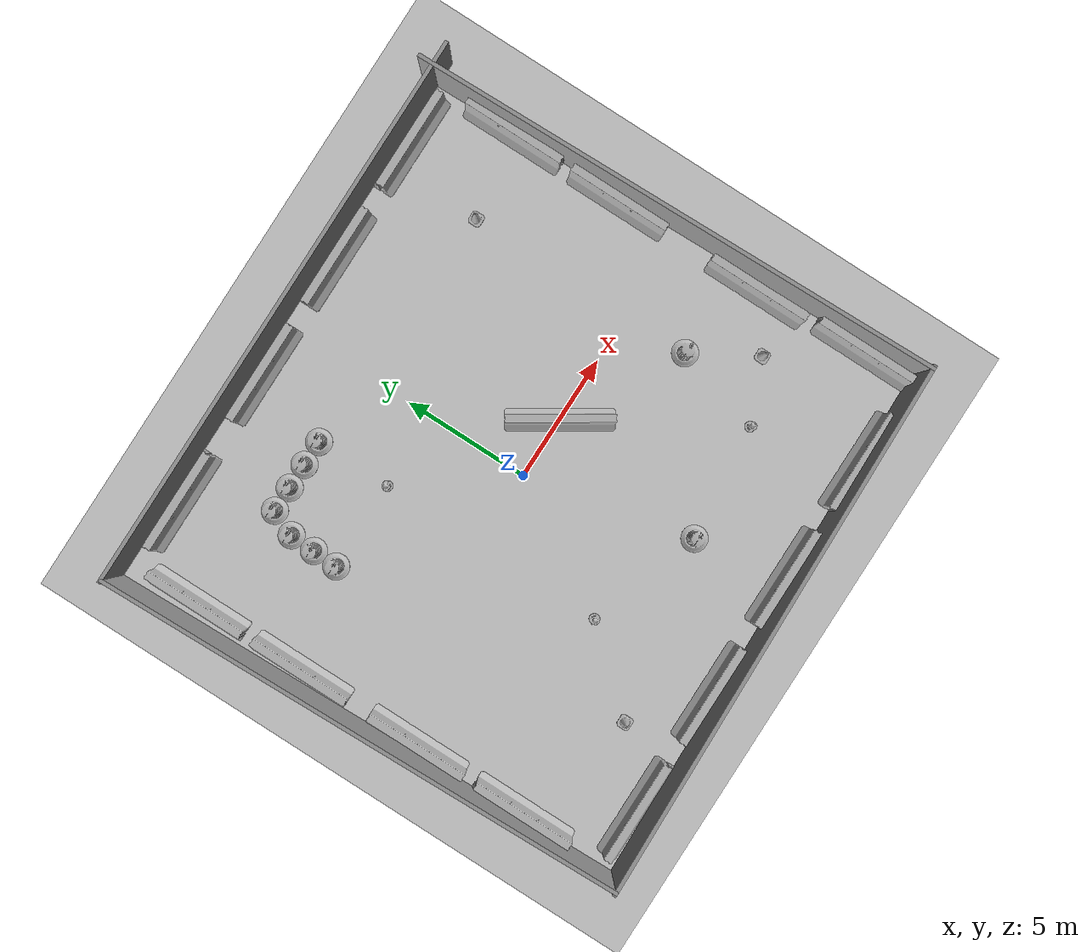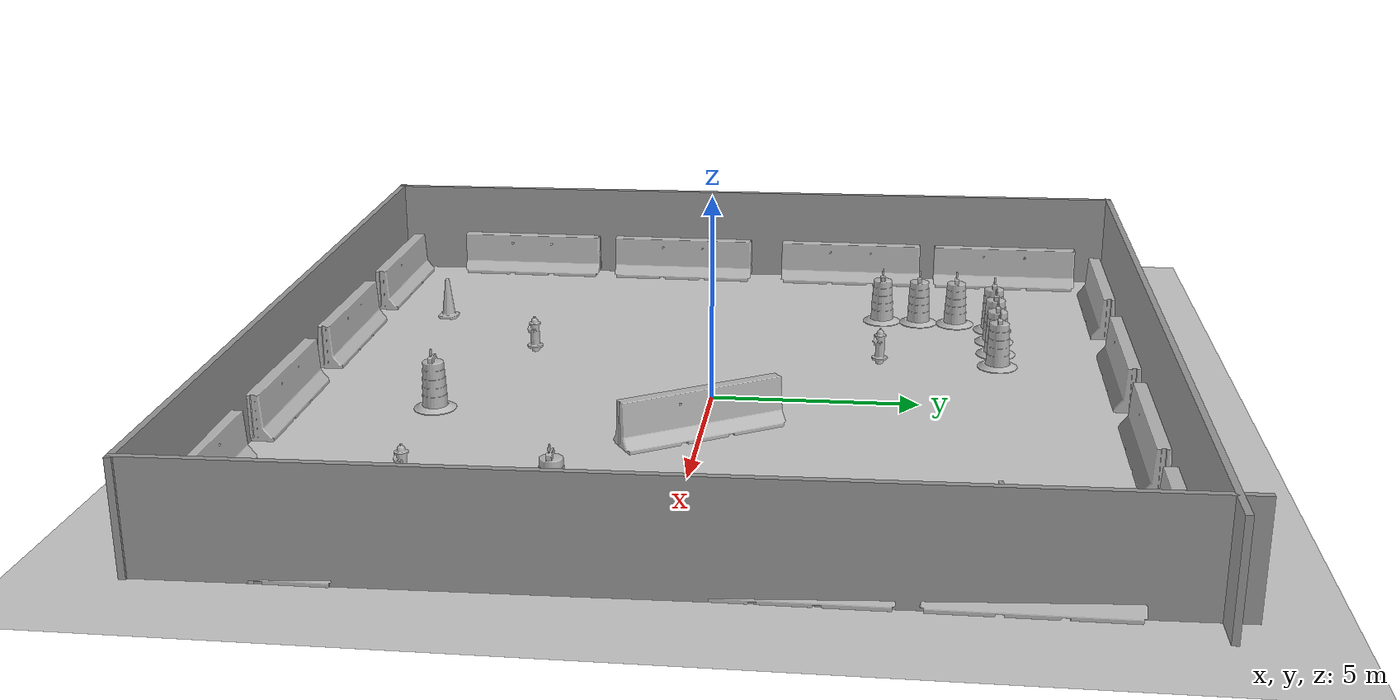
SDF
<sdf version="1.6">
 <world name="default">
  <plugin filename="ignition-gazebo-physics-system" name="gz::sim::systems::Physics"/>
  <plugin filename="gz-sim-sensors-system" name="gz::sim::systems::Sensors">
   <render_engine>ogre2</render_engine>
  </plugin>
  <plugin filename="gz-sim-imu-system" name="gz::sim::systems::Imu">
   <render_engine>ogre2</render_engine>
  </plugin>
  <plugin filename="gz-sim-scene-broadcaster-system" name="gz::sim::systems::SceneBroadcaster"/>
  <plugin filename="gz-sim-user-commands-system" name="gz::sim::systems::UserCommands"/>
  <light name="sun" type="directional">
   <pose>0 0 10 0 -0 0</pose>
   <diffuse>1 1 1 1</diffuse>
   <specular>0.2 0.2 0.2 1</specular>
   <attenuation>
    <range>1000</range>
    <constant>0.9</constant>
    <linear>0.01</linear>
    <quadratic>0.001</quadratic>
   </attenuation>
   <direction>-0.5 -0.5 -1</direction>
  </light>
  <physics name="default_physics" default="0" type="ode">
   <max_step_size>0.001</max_step_size>
   <real_time_factor>1</real_time_factor>
   <real_time_update_rate>1000</real_time_update_rate>
  </physics>
  <scene><ambient>1 1 1 1</ambient><background>1 1 1 1</background><shadows>1</shadows></scene>
  <spherical_coordinates>
   <surface_model>EARTH_WGS84</surface_model>
   <latitude_deg>43.5655</latitude_deg>
   <longitude_deg>1.4740</longitude_deg>
   <elevation>150</elevation>
   <heading_deg>180</heading_deg>
  </spherical_coordinates>
  <gravity>0 0 -9.8</gravity>
  <magnetic_field>6e-06 2.3e-05 -4.2e-05</magnetic_field>
  <atmosphere type="adiabatic"/>
  <audio><device>default</device></audio>
  <model name="ground_plane">
   <static>1</static>
   <link name="link">
    <collision name="collision">
     <geometry><plane><normal>0 0 1</normal><size>100 100</size></plane></geometry>
     <surface><friction><ode><mu>100</mu><mu2>50</mu2></ode></friction></surface>
    </collision>
    <visual name="visual">
     <cast_shadows>0</cast_shadows>
     <geometry><plane><normal>0 0 1</normal><size>100 100</size></plane></geometry>
     <material>
      <script><uri>file://media/materials/scripts/gazebo.material</uri><name>Gazebo/Grey</name></script>
     </material>
    </visual>
    <velocity_decay><linear>0</linear><angular>0</angular></velocity_decay>
   </link>
  </model>
  <model name="jersey_barrier">
   <static>1</static>
   <link name="link">
    <visual name="visual">
     <geometry><mesh><uri>model://jersey_barrier/meshes/jersey_barrier.dae</uri></mesh></geometry>
    </visual>
    <collision name="upright">
     <pose>0 0 0.5715 0 -0 0</pose>
     <geometry><box><size>4.06542 0.3063 1.143</size></box></geometry>
    </collision>
    <collision name="base">
     <pose>0 0 0.032258 0 -0 0</pose>
     <geometry><box><size>4.06542 0.8107 0.064516</size></box></geometry>
    </collision>
    <collision name="base2">
     <pose>0 0 0.1 0 -0 0</pose>
     <geometry><box><size>4.06542 0.65 0.1</size></box></geometry>
    </collision>
    <collision name="base3">
     <pose>0 0 0.2 0 -0 0</pose>
     <geometry><box><size>4.06542 0.5 0.1</size></box></geometry>
    </collision>
    <collision name="left-angle">
     <pose>0 -0.224 0.2401 0.9 -0 0</pose>
     <geometry><box><size>4.06542 0.5 0.064516</size></box></geometry>
    </collision>
    <collision name="right-angle">
     <pose>0 0.224 0.2401 -0.9 0 0</pose>
     <geometry><box><size>4.06542 0.5 0.064516</size></box></geometry>
    </collision>
    <velocity_decay><linear>0</linear><angular>0</angular></velocity_decay>
   </link>
   <pose>-8 -10 0 0 -0 0</pose>
  </model>
  <model name="jersey_barrier_0">
   <static>1</static>
   <link name="link">
    <visual name="visual">
     <geometry><mesh><uri>model://jersey_barrier/meshes/jersey_barrier.dae</uri></mesh></geometry>
    </visual>
    <collision name="upright">
     <pose>0 0 0.5715 0 -0 0</pose>
     <geometry><box><size>4.06542 0.3063 1.143</size></box></geometry>
    </collision>
    <collision name="base">
     <pose>0 0 0.032258 0 -0 0</pose>
     <geometry><box><size>4.06542 0.8107 0.064516</size></box></geometry>
    </collision>
    <collision name="base2">
     <pose>0 0 0.1 0 -0 0</pose>
     <geometry><box><size>4.06542 0.65 0.1</size></box></geometry>
    </collision>
    <collision name="base3">
     <pose>0 0 0.2 0 -0 0</pose>
     <geometry><box><size>4.06542 0.5 0.1</size></box></geometry>
    </collision>
    <collision name="left-angle">
     <pose>0 -0.224 0.2401 0.9 -0 0</pose>
     <geometry><box><size>4.06542 0.5 0.064516</size></box></geometry>
    </collision>
    <collision name="right-angle">
     <pose>0 0.224 0.2401 -0.9 0 0</pose>
     <geometry><box><size>4.06542 0.5 0.064516</size></box></geometry>
    </collision>
    <velocity_decay><linear>0</linear><angular>0</angular></velocity_decay>
   </link>
   <pose>-3 -10 0 0 -0 0</pose>
  </model>
  <model name="jersey_barrier_1">
   <static>1</static>
   <link name="link">
    <visual name="visual">
     <geometry><mesh><uri>model://jersey_barrier/meshes/jersey_barrier.dae</uri></mesh></geometry>
    </visual>
    <collision name="upright">
     <pose>0 0 0.5715 0 -0 0</pose>
     <geometry><box><size>4.06542 0.3063 1.143</size></box></geometry>
    </collision>
    <collision name="base">
     <pose>0 0 0.032258 0 -0 0</pose>
     <geometry><box><size>4.06542 0.8107 0.064516</size></box></geometry>
    </collision>
    <collision name="base2">
     <pose>0 0 0.1 0 -0 0</pose>
     <geometry><box><size>4.06542 0.65 0.1</size></box></geometry>
    </collision>
    <collision name="base3">
     <pose>0 0 0.2 0 -0 0</pose>
     <geometry><box><size>4.06542 0.5 0.1</size></box></geometry>
    </collision>
    <collision name="left-angle">
     <pose>0 -0.224 0.2401 0.9 -0 0</pose>
     <geometry><box><size>4.06542 0.5 0.064516</size></box></geometry>
    </collision>
    <collision name="right-angle">
     <pose>0 0.224 0.2401 -0.9 0 0</pose>
     <geometry><box><size>4.06542 0.5 0.064516</size></box></geometry>
    </collision>
    <velocity_decay><linear>0</linear><angular>0</angular></velocity_decay>
   </link>
   <pose>2 -10 0 0 -0 0</pose>
  </model>
  <model name="jersey_barrier_2">
   <static>1</static>
   <link name="link">
    <visual name="visual">
     <geometry><mesh><uri>model://jersey_barrier/meshes/jersey_barrier.dae</uri></mesh></geometry>
    </visual>
    <collision name="upright">
     <pose>0 0 0.5715 0 -0 0</pose>
     <geometry><box><size>4.06542 0.3063 1.143</size></box></geometry>
    </collision>
    <collision name="base">
     <pose>0 0 0.032258 0 -0 0</pose>
     <geometry><box><size>4.06542 0.8107 0.064516</size></box></geometry>
    </collision>
    <collision name="base2">
     <pose>0 0 0.1 0 -0 0</pose>
     <geometry><box><size>4.06542 0.65 0.1</size></box></geometry>
    </collision>
    <collision name="base3">
     <pose>0 0 0.2 0 -0 0</pose>
     <geometry><box><size>4.06542 0.5 0.1</size></box></geometry>
    </collision>
    <collision name="left-angle">
     <pose>0 -0.224 0.2401 0.9 -0 0</pose>
     <geometry><box><size>4.06542 0.5 0.064516</size></box></geometry>
    </collision>
    <collision name="right-angle">
     <pose>0 0.224 0.2401 -0.9 0 0</pose>
     <geometry><box><size>4.06542 0.5 0.064516</size></box></geometry>
    </collision>
    <velocity_decay><linear>0</linear><angular>0</angular></velocity_decay>
   </link>
   <pose>7 -10 0 0 -0 0</pose>
  </model>
  <model name="jersey_barrier_3">
   <static>1</static>
   <link name="link">
    <visual name="visual">
     <geometry><mesh><uri>model://jersey_barrier/meshes/jersey_barrier.dae</uri></mesh></geometry>
    </visual>
    <collision name="upright">
     <pose>0 0 0.5715 0 -0 0</pose>
     <geometry><box><size>4.06542 0.3063 1.143</size></box></geometry>
    </collision>
    <collision name="base">
     <pose>0 0 0.032258 0 -0 0</pose>
     <geometry><box><size>4.06542 0.8107 0.064516</size></box></geometry>
    </collision>
    <collision name="base2">
     <pose>0 0 0.1 0 -0 0</pose>
     <geometry><box><size>4.06542 0.65 0.1</size></box></geometry>
    </collision>
    <collision name="base3">
     <pose>0 0 0.2 0 -0 0</pose>
     <geometry><box><size>4.06542 0.5 0.1</size></box></geometry>
    </collision>
    <collision name="left-angle">
     <pose>0 -0.224 0.2401 0.9 -0 0</pose>
     <geometry><box><size>4.06542 0.5 0.064516</size></box></geometry>
    </collision>
    <collision name="right-angle">
     <pose>0 0.224 0.2401 -0.9 0 0</pose>
     <geometry><box><size>4.06542 0.5 0.064516</size></box></geometry>
    </collision>
    <velocity_decay><linear>0</linear><angular>0</angular></velocity_decay>
   </link>
   <pose>-7.50675 10 0 0 -0 0</pose>
  </model>
  <model name="jersey_barrier_4">
   <static>1</static>
   <link name="link">
    <visual name="visual">
     <geometry><mesh><uri>model://jersey_barrier/meshes/jersey_barrier.dae</uri></mesh></geometry>
    </visual>
    <collision name="upright">
     <pose>0 0 0.5715 0 -0 0</pose>
     <geometry><box><size>4.06542 0.3063 1.143</size></box></geometry>
    </collision>
    <collision name="base">
     <pose>0 0 0.032258 0 -0 0</pose>
     <geometry><box><size>4.06542 0.8107 0.064516</size></box></geometry>
    </collision>
    <collision name="base2">
     <pose>0 0 0.1 0 -0 0</pose>
     <geometry><box><size>4.06542 0.65 0.1</size></box></geometry>
    </collision>
    <collision name="base3">
     <pose>0 0 0.2 0 -0 0</pose>
     <geometry><box><size>4.06542 0.5 0.1</size></box></geometry>
    </collision>
    <collision name="left-angle">
     <pose>0 -0.224 0.2401 0.9 -0 0</pose>
     <geometry><box><size>4.06542 0.5 0.064516</size></box></geometry>
    </collision>
    <collision name="right-angle">
     <pose>0 0.224 0.2401 -0.9 0 0</pose>
     <geometry><box><size>4.06542 0.5 0.064516</size></box></geometry>
    </collision>
    <velocity_decay><linear>0</linear><angular>0</angular></velocity_decay>
   </link>
   <pose>-2 10 0 0 -0 0</pose>
  </model>
  <model name="jersey_barrier_5">
   <static>1</static>
   <link name="link">
    <visual name="visual">
     <geometry><mesh><uri>model://jersey_barrier/meshes/jersey_barrier.dae</uri></mesh></geometry>
    </visual>
    <collision name="upright">
     <pose>0 0 0.5715 0 -0 0</pose>
     <geometry><box><size>4.06542 0.3063 1.143</size></box></geometry>
    </collision>
    <collision name="base">
     <pose>0 0 0.032258 0 -0 0</pose>
     <geometry><box><size>4.06542 0.8107 0.064516</size></box></geometry>
    </collision>
    <collision name="base2">
     <pose>0 0 0.1 0 -0 0</pose>
     <geometry><box><size>4.06542 0.65 0.1</size></box></geometry>
    </collision>
    <collision name="base3">
     <pose>0 0 0.2 0 -0 0</pose>
     <geometry><box><size>4.06542 0.5 0.1</size></box></geometry>
    </collision>
    <collision name="left-angle">
     <pose>0 -0.224 0.2401 0.9 -0 0</pose>
     <geometry><box><size>4.06542 0.5 0.064516</size></box></geometry>
    </collision>
    <collision name="right-angle">
     <pose>0 0.224 0.2401 -0.9 0 0</pose>
     <geometry><box><size>4.06542 0.5 0.064516</size></box></geometry>
    </collision>
    <velocity_decay><linear>0</linear><angular>0</angular></velocity_decay>
   </link>
   <pose>3 10 0 0 -0 0</pose>
  </model>
  <model name="jersey_barrier_6">
   <static>1</static>
   <link name="link">
    <visual name="visual">
     <geometry><mesh><uri>model://jersey_barrier/meshes/jersey_barrier.dae</uri></mesh></geometry>
    </visual>
    <collision name="upright">
     <pose>0 0 0.5715 0 -0 0</pose>
     <geometry><box><size>4.06542 0.3063 1.143</size></box></geometry>
    </collision>
    <collision name="base">
     <pose>0 0 0.032258 0 -0 0</pose>
     <geometry><box><size>4.06542 0.8107 0.064516</size></box></geometry>
    </collision>
    <collision name="base2">
     <pose>0 0 0.1 0 -0 0</pose>
     <geometry><box><size>4.06542 0.65 0.1</size></box></geometry>
    </collision>
    <collision name="base3">
     <pose>0 0 0.2 0 -0 0</pose>
     <geometry><box><size>4.06542 0.5 0.1</size></box></geometry>
    </collision>
    <collision name="left-angle">
     <pose>0 -0.224 0.2401 0.9 -0 0</pose>
     <geometry><box><size>4.06542 0.5 0.064516</size></box></geometry>
    </collision>
    <collision name="right-angle">
     <pose>0 0.224 0.2401 -0.9 0 0</pose>
     <geometry><box><size>4.06542 0.5 0.064516</size></box></geometry>
    </collision>
    <velocity_decay><linear>0</linear><angular>0</angular></velocity_decay>
   </link>
   <pose>8 10 0 0 -0 0</pose>
  </model>
  <model name="jersey_barrier_7">
   <static>1</static>
   <link name="link">
    <visual name="visual">
     <geometry><mesh><uri>model://jersey_barrier/meshes/jersey_barrier.dae</uri></mesh></geometry>
    </visual>
    <collision name="upright">
     <pose>0 0 0.5715 0 -0 0</pose>
     <geometry><box><size>4.06542 0.3063 1.143</size></box></geometry>
    </collision>
    <collision name="base">
     <pose>0 0 0.032258 0 -0 0</pose>
     <geometry><box><size>4.06542 0.8107 0.064516</size></box></geometry>
    </collision>
    <collision name="base2">
     <pose>0 0 0.1 0 -0 0</pose>
     <geometry><box><size>4.06542 0.65 0.1</size></box></geometry>
    </collision>
    <collision name="base3">
     <pose>0 0 0.2 0 -0 0</pose>
     <geometry><box><size>4.06542 0.5 0.1</size></box></geometry>
    </collision>
    <collision name="left-angle">
     <pose>0 -0.224 0.2401 0.9 -0 0</pose>
     <geometry><box><size>4.06542 0.5 0.064516</size></box></geometry>
    </collision>
    <collision name="right-angle">
     <pose>0 0.224 0.2401 -0.9 0 0</pose>
     <geometry><box><size>4.06542 0.5 0.064516</size></box></geometry>
    </collision>
    <velocity_decay><linear>0</linear><angular>0</angular></velocity_decay>
   </link>
   <pose>10.3 -3.5 0 0 -0 1.57</pose>
  </model>
  <model name="jersey_barrier_8">
   <static>1</static>
   <link name="link">
    <visual name="visual">
     <geometry><mesh><uri>model://jersey_barrier/meshes/jersey_barrier.dae</uri></mesh></geometry>
    </visual>
    <collision name="upright">
     <pose>0 0 0.5715 0 -0 0</pose>
     <geometry><box><size>4.06542 0.3063 1.143</size></box></geometry>
    </collision>
    <collision name="base">
     <pose>0 0 0.032258 0 -0 0</pose>
     <geometry><box><size>4.06542 0.8107 0.064516</size></box></geometry>
    </collision>
    <collision name="base2">
     <pose>0 0 0.1 0 -0 0</pose>
     <geometry><box><size>4.06542 0.65 0.1</size></box></geometry>
    </collision>
    <collision name="base3">
     <pose>0 0 0.2 0 -0 0</pose>
     <geometry><box><size>4.06542 0.5 0.1</size></box></geometry>
    </collision>
    <collision name="left-angle">
     <pose>0 -0.224 0.2401 0.9 -0 0</pose>
     <geometry><box><size>4.06542 0.5 0.064516</size></box></geometry>
    </collision>
    <collision name="right-angle">
     <pose>0 0.224 0.2401 -0.9 0 0</pose>
     <geometry><box><size>4.06542 0.5 0.064516</size></box></geometry>
    </collision>
    <velocity_decay><linear>0</linear><angular>0</angular></velocity_decay>
   </link>
   <pose>10.3 2.5 0 0 -0 1.57</pose>
  </model>
  <model name="jersey_barrier_9">
   <static>1</static>
   <link name="link">
    <visual name="visual">
     <geometry><mesh><uri>model://jersey_barrier/meshes/jersey_barrier.dae</uri></mesh></geometry>
    </visual>
    <collision name="upright">
     <pose>0 0 0.5715 0 -0 0</pose>
     <geometry><box><size>4.06542 0.3063 1.143</size></box></geometry>
    </collision>
    <collision name="base">
     <pose>0 0 0.032258 0 -0 0</pose>
     <geometry><box><size>4.06542 0.8107 0.064516</size></box></geometry>
    </collision>
    <collision name="base2">
     <pose>0 0 0.1 0 -0 0</pose>
     <geometry><box><size>4.06542 0.65 0.1</size></box></geometry>
    </collision>
    <collision name="base3">
     <pose>0 0 0.2 0 -0 0</pose>
     <geometry><box><size>4.06542 0.5 0.1</size></box></geometry>
    </collision>
    <collision name="left-angle">
     <pose>0 -0.224 0.2401 0.9 -0 0</pose>
     <geometry><box><size>4.06542 0.5 0.064516</size></box></geometry>
    </collision>
    <collision name="right-angle">
     <pose>0 0.224 0.2401 -0.9 0 0</pose>
     <geometry><box><size>4.06542 0.5 0.064516</size></box></geometry>
    </collision>
    <velocity_decay><linear>0</linear><angular>0</angular></velocity_decay>
   </link>
   <pose>-10.3 -6.56962 0 0 -0 1.57</pose>
  </model>
  <model name="jersey_barrier_10">
   <static>1</static>
   <link name="link">
    <visual name="visual">
     <geometry><mesh><uri>model://jersey_barrier/meshes/jersey_barrier.dae</uri></mesh></geometry>
    </visual>
    <collision name="upright">
     <pose>0 0 0.5715 0 -0 0</pose>
     <geometry><box><size>4.06542 0.3063 1.143</size></box></geometry>
    </collision>
    <collision name="base">
     <pose>0 0 0.032258 0 -0 0</pose>
     <geometry><box><size>4.06542 0.8107 0.064516</size></box></geometry>
    </collision>
    <collision name="base2">
     <pose>0 0 0.1 0 -0 0</pose>
     <geometry><box><size>4.06542 0.65 0.1</size></box></geometry>
    </collision>
    <collision name="base3">
     <pose>0 0 0.2 0 -0 0</pose>
     <geometry><box><size>4.06542 0.5 0.1</size></box></geometry>
    </collision>
    <collision name="left-angle">
     <pose>0 -0.224 0.2401 0.9 -0 0</pose>
     <geometry><box><size>4.06542 0.5 0.064516</size></box></geometry>
    </collision>
    <collision name="right-angle">
     <pose>0 0.224 0.2401 -0.9 0 0</pose>
     <geometry><box><size>4.06542 0.5 0.064516</size></box></geometry>
    </collision>
    <velocity_decay><linear>0</linear><angular>0</angular></velocity_decay>
   </link>
   <pose>-10.3 -2 0 0 -0 1.57</pose>
  </model>
  <model name="jersey_barrier_11">
   <static>1</static>
   <link name="link">
    <visual name="visual">
     <geometry><mesh><uri>model://jersey_barrier/meshes/jersey_barrier.dae</uri></mesh></geometry>
    </visual>
    <collision name="upright">
     <pose>0 0 0.5715 0 -0 0</pose>
     <geometry><box><size>4.06542 0.3063 1.143</size></box></geometry>
    </collision>
    <collision name="base">
     <pose>0 0 0.032258 0 -0 0</pose>
     <geometry><box><size>4.06542 0.8107 0.064516</size></box></geometry>
    </collision>
    <collision name="base2">
     <pose>0 0 0.1 0 -0 0</pose>
     <geometry><box><size>4.06542 0.65 0.1</size></box></geometry>
    </collision>
    <collision name="base3">
     <pose>0 0 0.2 0 -0 0</pose>
     <geometry><box><size>4.06542 0.5 0.1</size></box></geometry>
    </collision>
    <collision name="left-angle">
     <pose>0 -0.224 0.2401 0.9 -0 0</pose>
     <geometry><box><size>4.06542 0.5 0.064516</size></box></geometry>
    </collision>
    <collision name="right-angle">
     <pose>0 0.224 0.2401 -0.9 0 0</pose>
     <geometry><box><size>4.06542 0.5 0.064516</size></box></geometry>
    </collision>
    <velocity_decay><linear>0</linear><angular>0</angular></velocity_decay>
   </link>
   <pose>-10.30113 3 0 0 -0 1.57</pose>
  </model>
  <model name="jersey_barrier_12">
   <static>1</static>
   <link name="link">
    <visual name="visual">
     <geometry><mesh><uri>model://jersey_barrier/meshes/jersey_barrier.dae</uri></mesh></geometry>
    </visual>
    <collision name="upright">
     <pose>0 0 0.5715 0 -0 0</pose>
     <geometry><box><size>4.06542 0.3063 1.143</size></box></geometry>
    </collision>
    <collision name="base">
     <pose>0 0 0.032258 0 -0 0</pose>
     <geometry><box><size>4.06542 0.8107 0.064516</size></box></geometry>
    </collision>
    <collision name="base2">
     <pose>0 0 0.1 0 -0 0</pose>
     <geometry><box><size>4.06542 0.65 0.1</size></box></geometry>
    </collision>
    <collision name="base3">
     <pose>0 0 0.2 0 -0 0</pose>
     <geometry><box><size>4.06542 0.5 0.1</size></box></geometry>
    </collision>
    <collision name="left-angle">
     <pose>0 -0.224 0.2401 0.9 -0 0</pose>
     <geometry><box><size>4.06542 0.5 0.064516</size></box></geometry>
    </collision>
    <collision name="right-angle">
     <pose>0 0.224 0.2401 -0.9 0 0</pose>
     <geometry><box><size>4.06542 0.5 0.064516</size></box></geometry>
    </collision>
    <velocity_decay><linear>0</linear><angular>0</angular></velocity_decay>
   </link>
   <pose>10.5 -8 0 0 -0 1.57</pose>
  </model>
  <model name="jersey_barrier_13">
   <static>1</static>
   <link name="link">
    <visual name="visual">
     <geometry><mesh><uri>model://jersey_barrier/meshes/jersey_barrier.dae</uri></mesh></geometry>
    </visual>
    <collision name="upright">
     <pose>0 0 0.5715 0 -0 0</pose>
     <geometry><box><size>4.06542 0.3063 1.143</size></box></geometry>
    </collision>
    <collision name="base">
     <pose>0 0 0.032258 0 -0 0</pose>
     <geometry><box><size>4.06542 0.8107 0.064516</size></box></geometry>
    </collision>
    <collision name="base2">
     <pose>0 0 0.1 0 -0 0</pose>
     <geometry><box><size>4.06542 0.65 0.1</size></box></geometry>
    </collision>
    <collision name="base3">
     <pose>0 0 0.2 0 -0 0</pose>
     <geometry><box><size>4.06542 0.5 0.1</size></box></geometry>
    </collision>
    <collision name="left-angle">
     <pose>0 -0.224 0.2401 0.9 -0 0</pose>
     <geometry><box><size>4.06542 0.5 0.064516</size></box></geometry>
    </collision>
    <collision name="right-angle">
     <pose>0 0.224 0.2401 -0.9 0 0</pose>
     <geometry><box><size>4.06542 0.5 0.064516</size></box></geometry>
    </collision>
    <velocity_decay><linear>0</linear><angular>0</angular></velocity_decay>
   </link>
   <pose>10.3 7 0 0 -0 1.57</pose>
  </model>
  <model name="jersey_barrier_14">
   <static>1</static>
   <link name="link">
    <visual name="visual">
     <geometry><mesh><uri>model://jersey_barrier/meshes/jersey_barrier.dae</uri></mesh></geometry>
    </visual>
    <collision name="upright">
     <pose>0 0 0.5715 0 -0 0</pose>
     <geometry><box><size>4.06542 0.3063 1.143</size></box></geometry>
    </collision>
    <collision name="base">
     <pose>0 0 0.032258 0 -0 0</pose>
     <geometry><box><size>4.06542 0.8107 0.064516</size></box></geometry>
    </collision>
    <collision name="base2">
     <pose>0 0 0.1 0 -0 0</pose>
     <geometry><box><size>4.06542 0.65 0.1</size></box></geometry>
    </collision>
    <collision name="base3">
     <pose>0 0 0.2 0 -0 0</pose>
     <geometry><box><size>4.06542 0.5 0.1</size></box></geometry>
    </collision>
    <collision name="left-angle">
     <pose>0 -0.224 0.2401 0.9 -0 0</pose>
     <geometry><box><size>4.06542 0.5 0.064516</size></box></geometry>
    </collision>
    <collision name="right-angle">
     <pose>0 0.224 0.2401 -0.9 0 0</pose>
     <geometry><box><size>4.06542 0.5 0.064516</size></box></geometry>
    </collision>
    <velocity_decay><linear>0</linear><angular>0</angular></velocity_decay>
   </link>
   <pose>-10.3 7.4858 0 0 -0 1.57</pose>
  </model>
  <model name="fire_hydrant">
   <static>1</static>
   <link name="link">
    <collision name="collision">
     <geometry><mesh><uri>model://fire_hydrant/meshes/fire_hydrant.dae</uri></mesh></geometry>
    </collision>
    <visual name="visual">
     <geometry><mesh><uri>model://fire_hydrant/meshes/fire_hydrant.dae</uri></mesh></geometry>
    </visual>
    <velocity_decay><linear>0</linear><angular>0</angular></velocity_decay>
   </link>
   <pose>6 -6 0 0 -0 0</pose>
  </model>
  <model name="fire_hydrant_0">
   <static>1</static>
   <link name="link">
    <collision name="collision">
     <geometry><mesh><uri>model://fire_hydrant/meshes/fire_hydrant.dae</uri></mesh></geometry>
    </collision>
    <visual name="visual">
     <geometry><mesh><uri>model://fire_hydrant/meshes/fire_hydrant.dae</uri></mesh></geometry>
    </visual>
    <velocity_decay><linear>0</linear><angular>0</angular></velocity_decay>
   </link>
   <pose>-3 4 0 0 -0 0</pose>
  </model>
  <model name="fire_hydrant_1">
   <static>1</static>
   <link name="link">
    <collision name="collision">
     <geometry><mesh><uri>model://fire_hydrant/meshes/fire_hydrant.dae</uri></mesh></geometry>
    </collision>
    <visual name="visual">
     <geometry><mesh><uri>model://fire_hydrant/meshes/fire_hydrant.dae</uri></mesh></geometry>
    </visual>
    <velocity_decay><linear>0</linear><angular>0</angular></velocity_decay>
   </link>
   <pose>-3 -5 0 0 -0 0</pose>
  </model>
  <model name="jersey_barrier_15">
   <static>1</static>
   <link name="link">
    <visual name="visual">
     <geometry><mesh><uri>model://jersey_barrier/meshes/jersey_barrier.dae</uri></mesh></geometry>
    </visual>
    <collision name="upright">
     <pose>0 0 0.5715 0 -0 0</pose>
     <geometry><box><size>4.06542 0.3063 1.143</size></box></geometry>
    </collision>
    <collision name="base">
     <pose>0 0 0.032258 0 -0 0</pose>
     <geometry><box><size>4.06542 0.8107 0.064516</size></box></geometry>
    </collision>
    <collision name="base2">
     <pose>0 0 0.1 0 -0 0</pose>
     <geometry><box><size>4.06542 0.65 0.1</size></box></geometry>
    </collision>
    <collision name="base3">
     <pose>0 0 0.2 0 -0 0</pose>
     <geometry><box><size>4.06542 0.5 0.1</size></box></geometry>
    </collision>
    <collision name="left-angle">
     <pose>0 -0.224 0.2401 0.9 -0 0</pose>
     <geometry><box><size>4.06542 0.5 0.064516</size></box></geometry>
    </collision>
    <collision name="right-angle">
     <pose>0 0.224 0.2401 -0.9 0 0</pose>
     <geometry><box><size>4.06542 0.5 0.064516</size></box></geometry>
    </collision>
    <velocity_decay><linear>0</linear><angular>0</angular></velocity_decay>
   </link>
   <pose>2.45495 0 0 0 -0 -1.0</pose>
  </model>
  <model name="Construction Cone">
   <link name="link">
    <collision name="collision">
     <geometry>
      <mesh><scale>10 10 10</scale><uri>model://construction_cone/meshes/construction_cone.dae</uri></mesh>
     </geometry>
    </collision>
    <visual name="visual">
     <geometry>
      <mesh><scale>10 10 10</scale><uri>model://construction_cone/meshes/construction_cone.dae</uri></mesh>
     </geometry>
    </visual>
    <velocity_decay><linear>0</linear><angular>0</angular></velocity_decay>
    <inertial>
     <inertia><ixx>1</ixx><ixy>0</ixy><ixz>0</ixz><iyy>1</iyy><iyz>0</iyz><izz>1</izz></inertia>
     <mass>1</mass>
    </inertial>
   </link>
   <pose>-5.59121 -8 0 0 -0 0</pose>
   <static>1</static>
  </model>
  <model name="Construction Barrel">
   <link name="link">
    <inertial>
     <pose>0 0 0.4 0 -0 0</pose>
     <mass>1</mass>
     <inertia><ixx>51.2096</ixx><iyy>51.2096</iyy><izz>25</izz><ixy>0</ixy><ixz>0</ixz><iyz>0</iyz></inertia>
    </inertial>
    <collision name="collision">
     <geometry><mesh><uri>model://construction_barrel/meshes/construction_barrel.dae</uri></mesh></geometry>
    </collision>
    <visual name="visual">
     <geometry><mesh><uri>model://construction_barrel/meshes/construction_barrel.dae</uri></mesh></geometry>
    </visual>
    <velocity_decay><linear>0</linear><angular>0</angular></velocity_decay>
   </link>
   <pose>7 -2.54643 0 0 -0 0</pose>
   <static>1</static>
  </model>
  <model name="Construction Cone_0">
   <link name="link">
    <collision name="collision">
     <geometry>
      <mesh><scale>10 10 10</scale><uri>model://construction_cone/meshes/construction_cone.dae</uri></mesh>
     </geometry>
    </collision>
    <visual name="visual">
     <geometry>
      <mesh><scale>10 10 10</scale><uri>model://construction_cone/meshes/construction_cone.dae</uri></mesh>
     </geometry>
    </visual>
    <velocity_decay><linear>0</linear><angular>0</angular></velocity_decay>
    <inertial>
     <inertia><ixx>1</ixx><ixy>0</ixy><ixz>0</ixz><iyy>1</iyy><iyz>0</iyz><izz>1</izz></inertia>
     <mass>1</mass>
    </inertial>
   </link>
   <pose>7 6.55652 0 0 -0 0</pose>
   <static>1</static>
  </model>
  <model name="Construction Barrel_0">
   <link name="link">
    <inertial>
     <pose>0 0 0.4 0 -0 0</pose>
     <mass>1</mass>
     <inertia><ixx>51.2096</ixx><iyy>51.2096</iyy><izz>25</izz><ixy>0</ixy><ixz>0</ixz><iyz>0</iyz></inertia>
    </inertial>
    <collision name="collision">
     <geometry><mesh><uri>model://construction_barrel/meshes/construction_barrel.dae</uri></mesh></geometry>
    </collision>
    <visual name="visual">
     <geometry><mesh><uri>model://construction_barrel/meshes/construction_barrel.dae</uri></mesh></geometry>
    </visual>
    <velocity_decay><linear>0</linear><angular>0</angular></velocity_decay>
   </link>
   <pose>1.45104 -6.51057 0 0 -0 0</pose>
   <static>1</static>
  </model>
  <model name="Construction Barrel_1">
   <link name="link">
    <inertial>
     <pose>0 0 0.4 0 -0 0</pose>
     <mass>1</mass>
     <inertia><ixx>51.2096</ixx><iyy>51.2096</iyy><izz>25</izz><ixy>0</ixy><ixz>0</ixz><iyz>0</iyz></inertia>
    </inertial>
    <collision name="collision">
     <geometry><mesh><uri>model://construction_barrel/meshes/construction_barrel.dae</uri></mesh></geometry>
    </collision>
    <visual name="visual">
     <geometry><mesh><uri>model://construction_barrel/meshes/construction_barrel.dae</uri></mesh></geometry>
    </visual>
    <velocity_decay><linear>0</linear><angular>0</angular></velocity_decay>
   </link>
   <pose>-6.5081 4 0 0 -0 0</pose>
   <static>1</static>
  </model>
  <model name="Construction Barrel_2">
   <link name="link">
    <inertial>
     <pose>0 0 0.4 0 -0 0</pose>
     <mass>1</mass>
     <inertia><ixx>51.2096</ixx><iyy>51.2096</iyy><izz>25</izz><ixy>0</ixy><ixz>0</ixz><iyz>0</iyz></inertia>
    </inertial>
    <collision name="collision">
     <geometry><mesh><uri>model://construction_barrel/meshes/construction_barrel.dae</uri></mesh></geometry>
    </collision>
    <visual name="visual">
     <geometry><mesh><uri>model://construction_barrel/meshes/construction_barrel.dae</uri></mesh></geometry>
    </visual>
    <velocity_decay><linear>0</linear><angular>0</angular></velocity_decay>
   </link>
   <pose>-6.46924 5 0 0 -0 0</pose>
   <static>1</static>
  </model>
  <model name="Construction Barrel_3">
   <link name="link">
    <inertial>
     <pose>0 0 0.4 0 -0 0</pose>
     <mass>1</mass>
     <inertia><ixx>51.2096</ixx><iyy>51.2096</iyy><izz>25</izz><ixy>0</ixy><ixz>0</ixz><iyz>0</iyz></inertia>
    </inertial>
    <collision name="collision">
     <geometry><mesh><uri>model://construction_barrel/meshes/construction_barrel.dae</uri></mesh></geometry>
    </collision>
    <visual name="visual">
     <geometry><mesh><uri>model://construction_barrel/meshes/construction_barrel.dae</uri></mesh></geometry>
    </visual>
    <velocity_decay><linear>0</linear><angular>0</angular></velocity_decay>
   </link>
   <pose>-6.4302 6 0 0 -0 0</pose>
   <static>1</static>
  </model>
  <model name="Construction Barrel_4">
   <link name="link">
    <inertial>
     <pose>0 0 0.4 0 -0 0</pose>
     <mass>1</mass>
     <inertia><ixx>51.2096</ixx><iyy>51.2096</iyy><izz>25</izz><ixy>0</ixy><ixz>0</ixz><iyz>0</iyz></inertia>
    </inertial>
    <collision name="collision">
     <geometry><mesh><uri>model://construction_barrel/meshes/construction_barrel.dae</uri></mesh></geometry>
    </collision>
    <visual name="visual">
     <geometry><mesh><uri>model://construction_barrel/meshes/construction_barrel.dae</uri></mesh></geometry>
    </visual>
    <velocity_decay><linear>0</linear><angular>0</angular></velocity_decay>
   </link>
   <pose>-6 7 0 0 -0 0</pose>
   <static>1</static>
  </model>
  <model name="Construction Barrel_5">
   <link name="link">
    <inertial>
     <pose>0 0 0.4 0 -0 0</pose>
     <mass>1</mass>
     <inertia><ixx>51.2096</ixx><iyy>51.2096</iyy><izz>25</izz><ixy>0</ixy><ixz>0</ixz><iyz>0</iyz></inertia>
    </inertial>
    <collision name="collision">
     <geometry><mesh><uri>model://construction_barrel/meshes/construction_barrel.dae</uri></mesh></geometry>
    </collision>
    <visual name="visual">
     <geometry><mesh><uri>model://construction_barrel/meshes/construction_barrel.dae</uri></mesh></geometry>
    </visual>
    <velocity_decay><linear>0</linear><angular>0</angular></velocity_decay>
   </link>
   <pose>-5 7 0 0 -0 0</pose>
   <static>1</static>
  </model>
  <model name="Construction Barrel_6">
   <link name="link">
    <inertial>
     <pose>0 0 0.4 0 -0 0</pose>
     <mass>1</mass>
     <inertia><ixx>51.2096</ixx><iyy>51.2096</iyy><izz>25</izz><ixy>0</ixy><ixz>0</ixz><iyz>0</iyz></inertia>
    </inertial>
    <collision name="collision">
     <geometry><mesh><uri>model://construction_barrel/meshes/construction_barrel.dae</uri></mesh></geometry>
    </collision>
    <visual name="visual">
     <geometry><mesh><uri>model://construction_barrel/meshes/construction_barrel.dae</uri></mesh></geometry>
    </visual>
    <velocity_decay><linear>0</linear><angular>0</angular></velocity_decay>
   </link>
   <pose>-4 7 0 0 -0 0</pose>
   <static>1</static>
  </model>
  <model name="Construction Barrel_7">
   <link name="link">
    <inertial>
     <pose>0 0 0.4 0 -0 0</pose>
     <mass>1</mass>
     <inertia><ixx>51.2096</ixx><iyy>51.2096</iyy><izz>25</izz><ixy>0</ixy><ixz>0</ixz><iyz>0</iyz></inertia>
    </inertial>
    <collision name="collision">
     <geometry><mesh><uri>model://construction_barrel/meshes/construction_barrel.dae</uri></mesh></geometry>
    </collision>
    <visual name="visual">
     <geometry><mesh><uri>model://construction_barrel/meshes/construction_barrel.dae</uri></mesh></geometry>
    </visual>
    <velocity_decay><linear>0</linear><angular>0</angular></velocity_decay>
   </link>
   <pose>-3 7 0 0 -0 0</pose>
   <static>1</static>
  </model>
  <model name="Construction Cone_1">
   <link name="link">
    <collision name="collision">
     <geometry>
      <mesh><scale>10 10 10</scale><uri>model://construction_cone/meshes/construction_cone.dae</uri></mesh>
     </geometry>
    </collision>
    <visual name="visual">
     <geometry>
      <mesh><scale>10 10 10</scale><uri>model://construction_cone/meshes/construction_cone.dae</uri></mesh>
     </geometry>
    </visual>
    <velocity_decay><linear>0</linear><angular>0</angular></velocity_decay>
    <inertial>
     <inertia><ixx>1</ixx><ixy>0</ixy><ixz>0</ixz><iyy>1</iyy><iyz>0</iyz><izz>1</izz></inertia>
     <mass>1</mass>
    </inertial>
   </link>
   <pose>8.42887 -5 0 0 -0 0</pose>
   <static>1</static>
  </model>
  <model name="Untitled">
   <pose>0.083811 0.205165 0 0 -0 0</pose>
   <link name="Wall_0">
    <collision name="Wall_0_Collision">
     <geometry><box><size>22.5 0.15 2.5</size></box></geometry>
     <pose>0 0 1.25 0 -0 0</pose>
    </collision>
    <visual name="Wall_0_Visual">
     <pose>0 0 1.25 0 -0 0</pose>
     <geometry><box><size>22.5 0.15 2.5</size></box></geometry>
     <material>
      <script><uri>file://media/materials/scripts/gazebo.material</uri><name>Gazebo/Grey</name></script>
      <ambient>1 1 1 1</ambient>
     </material>
     <meta><layer>0</layer></meta>
    </visual>
    <pose>0 10.252 0 0 -0 0</pose>
   </link>
   <link name="Wall_2">
    <collision name="Wall_2_Collision">
     <geometry><box><size>21.1688 0.15 2.5</size></box></geometry>
     <pose>0 0 1.25 0 -0 0</pose>
    </collision>
    <visual name="Wall_2_Visual">
     <pose>0 0 1.25 0 -0 0</pose>
     <geometry><box><size>21.1688 0.15 2.5</size></box></geometry>
     <material>
      <script><uri>file://media/materials/scripts/gazebo.material</uri><name>Gazebo/Grey</name></script>
      <ambient>1 1 1 1</ambient>
     </material>
     <meta><layer>0</layer></meta>
    </visual>
    <pose>-10.8595 -0.273651 0 0 -0 -1.54475</pose>
   </link>
   <link name="Wall_3">
    <collision name="Wall_3_Collision">
     <geometry><box><size>21.6686 0.15 2.5</size></box></geometry>
     <pose>0 0 1.25 0 -0 0</pose>
    </collision>
    <visual name="Wall_3_Visual">
     <pose>0 0 1.25 0 -0 0</pose>
     <geometry><box><size>21.6686 0.15 2.5</size></box></geometry>
     <material>
      <script><uri>file://media/materials/scripts/gazebo.material</uri><name>Gazebo/Grey</name></script>
      <ambient>1 1 1 1</ambient>
     </material>
     <meta><layer>0</layer></meta>
    </visual>
    <pose>0.109189 -10.5057 0 0 -0 0.025447</pose>
   </link>
   <link name="Wall_4">
    <collision name="Wall_4_Collision">
     <geometry><box><size>21.1673 0.15 2.5</size></box></geometry>
     <pose>0 0 1.25 0 -0 0</pose>
    </collision>
    <visual name="Wall_4_Visual">
     <pose>0 0 1.25 0 -0 0</pose>
     <geometry><box><size>21.1673 0.15 2.5</size></box></geometry>
     <material>
      <script><uri>file://media/materials/scripts/gazebo.material</uri><name>Gazebo/Grey</name></script>
      <ambient>1 1 1 1</ambient>
     </material>
     <meta><layer>0</layer></meta>
    </visual>
    <pose>10.5608 0.273864 0 0 -0 1.59396</pose>
   </link>
   <static>1</static>
  </model>
 </world>
</sdf>
